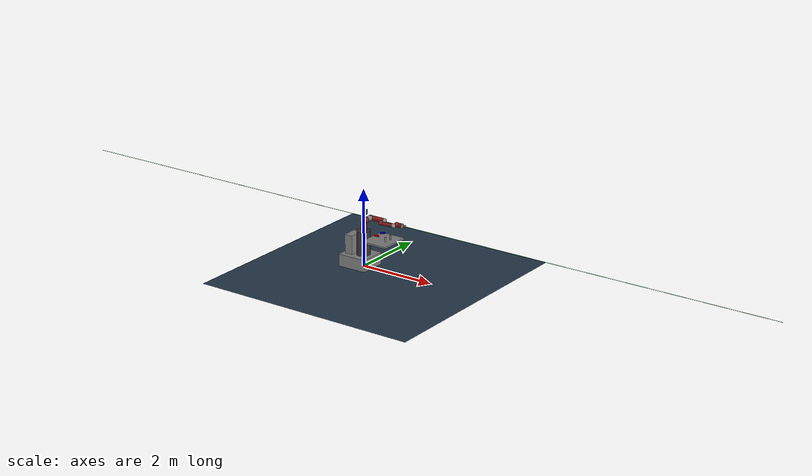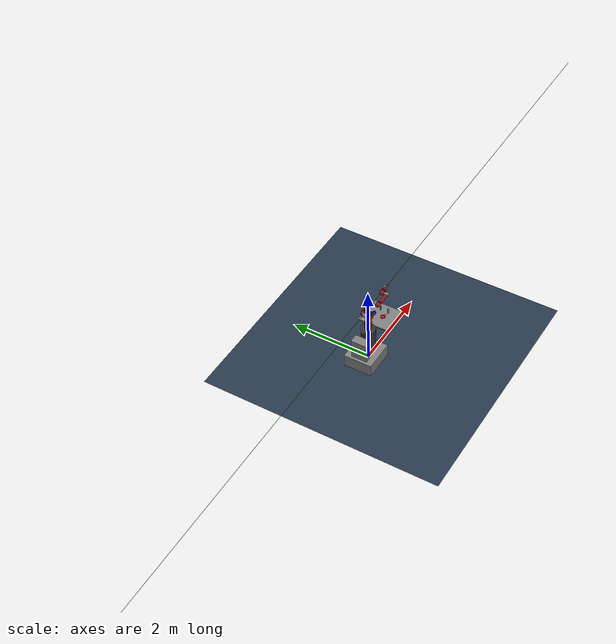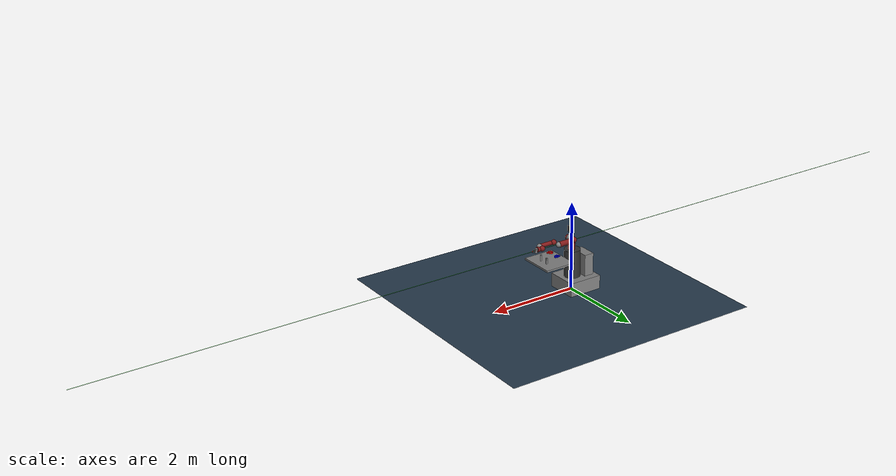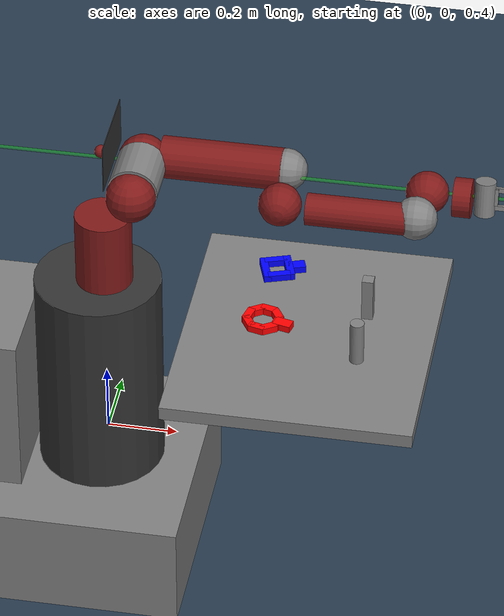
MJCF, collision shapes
<mujoco model="base">
  <compiler angle="radian" meshdir="meshes/" />
  <option cone="elliptic" impratio="20" />
  <size nconmax="5000" njmax="5000" />

  <asset>
  <texture builtin="gradient" height="256" rgb1=".9 .9 1." rgb2=".2 .3 .4" type="skybox" width="256" />
    <texture builtin="checker" height="512" name="texplane" rgb1=".2 .3 .4" rgb2=".1 0.15 0.2" type="2d" width="512" />
    <texture file="/Users/patrickliu/.mujoco/mjpro150/robosuite/robosuite/models/assets/arenas/../textures/light-wood.png" name="tex-light-wood" type="2d" />
    <texture file="/Users/patrickliu/.mujoco/mjpro150/robosuite/robosuite/models/assets/arenas/../textures/dark-wood.png" name="tex-dark-wood" type="2d" />
    <material name="light-wood" reflectance="0.5" texrepeat="15 15" texture="tex-light-wood" texuniform="true" />
    <material name="dark-wood" reflectance="0.5" texrepeat="5 5" texture="tex-dark-wood" texuniform="true" />
    <material name="floorplane" reflectance="0.5" texrepeat="1 1" texture="texplane" texuniform="true" />
  <mesh file="/Users/patrickliu/.mujoco/mjpro150/robosuite/robosuite/models/assets/robots/sawyer/meshes/pedestal.stl" name="pedestal" />
    <mesh file="/Users/patrickliu/.mujoco/mjpro150/robosuite/robosuite/models/assets/robots/sawyer/meshes/base.stl" name="base" />
    <mesh file="/Users/patrickliu/.mujoco/mjpro150/robosuite/robosuite/models/assets/robots/sawyer/meshes/l0.stl" name="l0" />
    <mesh file="/Users/patrickliu/.mujoco/mjpro150/robosuite/robosuite/models/assets/robots/sawyer/meshes/head.stl" name="head" />
    <mesh file="/Users/patrickliu/.mujoco/mjpro150/robosuite/robosuite/models/assets/robots/sawyer/meshes/l1.stl" name="l1" />
    <mesh file="/Users/patrickliu/.mujoco/mjpro150/robosuite/robosuite/models/assets/robots/sawyer/meshes/l2.stl" name="l2" />
    <mesh file="/Users/patrickliu/.mujoco/mjpro150/robosuite/robosuite/models/assets/robots/sawyer/meshes/l3.stl" name="l3" />
    <mesh file="/Users/patrickliu/.mujoco/mjpro150/robosuite/robosuite/models/assets/robots/sawyer/meshes/l4.stl" name="l4" />
    <mesh file="/Users/patrickliu/.mujoco/mjpro150/robosuite/robosuite/models/assets/robots/sawyer/meshes/l5.stl" name="l5" />
    <mesh file="/Users/patrickliu/.mujoco/mjpro150/robosuite/robosuite/models/assets/robots/sawyer/meshes/l6.stl" name="l6" />
  <mesh file="/Users/patrickliu/.mujoco/mjpro150/robosuite/robosuite/models/assets/grippers/meshes/two_finger_gripper/electric_gripper_base.STL" name="electric_gripper_base" />
        <mesh file="/Users/patrickliu/.mujoco/mjpro150/robosuite/robosuite/models/assets/grippers/meshes/two_finger_gripper/standard_narrow.STL" name="standard_narrow" />
        <mesh file="/Users/patrickliu/.mujoco/mjpro150/robosuite/robosuite/models/assets/grippers/meshes/two_finger_gripper/half_round_tip.STL" name="half_round_tip" />
    <texture file="/Users/patrickliu/.mujoco/mjpro150/robosuite/robosuite/models/assets/objects/../textures/metal.png" name="tex-metal" type="2d" />
    <material name="metal" reflectance="0.7" texrepeat="10 10" texture="tex-metal" texuniform="true" />
  </asset>

  <actuator>
  <velocity ctrllimited="true" ctrlrange="-1.74 1.74" joint="right_j0" kv="8.0" name="vel_right_j0" />
        <velocity ctrllimited="true" ctrlrange="-1.328 1.328" joint="right_j1" kv="7.0" name="vel_right_j1" />
        <velocity ctrllimited="true" ctrlrange="-1.957 1.957" joint="right_j2" kv="6.0" name="vel_right_j2" />
        <velocity ctrllimited="true" ctrlrange="-1.957 1.957" joint="right_j3" kv="4.0" name="vel_right_j3" />
        <velocity ctrllimited="true" ctrlrange="-3.485 3.485" joint="right_j4" kv="2.0" name="vel_right_j4" />
        <velocity ctrllimited="true" ctrlrange="-3.485 3.485" joint="right_j5" kv="0.5" name="vel_right_j5" />
        <velocity ctrllimited="true" ctrlrange="-4.545 4.545" joint="right_j6" kv="0.1" name="vel_right_j6" />
  <position ctrllimited="true" ctrlrange="-0.0115 0.020833" forcelimited="true" forcerange="-20 20" joint="r_gripper_r_finger_joint" kp="10000" name="gripper_r_gripper_r_finger_joint" />
        <position ctrllimited="true" ctrlrange="-0.020833 0.0115" forcelimited="true" forcerange="-20 20" joint="r_gripper_l_finger_joint" kp="10000" name="gripper_r_gripper_l_finger_joint" />

    </actuator>

  <worldbody>
  <geom condim="3" material="floorplane" name="floor" pos="0.5 -0.15 0.0" size="3 3 .125" type="plane" />
    <body name="table" pos="0.58 0.0 0.8">
      <geom friction="1 0.005 0.0001" name="table_collision" pos="0 0 0" size="0.35 0.4 0.02" type="box" />
      <geom conaffinity="0" contype="0" group="1" material="light-wood" pos="0 0 0" size="0.35 0.4 0.02" type="box" />
    </body>
    <body name="peg1" pos="0.73 0.1 0.85">
      <geom friction="1 0.005 0.0001" pos="0 0 0" size="0.016 0.016 0.1" type="box" />
      <geom conaffinity="0" contype="0" group="1" pos="0 0 0" rgba="0.3 0.3 1 1" size="0.016 0.016 0.1" type="box" />
    </body>
    <body name="peg2" pos="0.73 -0.09999999999999999 0.85">
      <geom friction="1 0.005 0.0001" pos="0 0 0" size="0.02 0.1" type="cylinder" />
      <geom conaffinity="0" contype="0" group="1" pos="0 0 0" rgba="1 0.3 0.3 1" size="0.02 0.1" type="cylinder" />
    </body>

    <light castshadow="false" diffuse=".8 .8 .8" dir="0 -.15 -1" directional="false" pos="1.5 0.85 4.0" specular="0.3 0.3 0.3" />
    <light castshadow="false" diffuse=".8 .8 .8" dir="0 -.15 -1" directional="false" pos="-2.5 -3.15 4.0" specular="0.3 0.3 0.3" />

    <camera mode="fixed" name="frontview" pos="2.1 0.0 1.45" quat="0.56 0.43 0.43 0.56" />

    <camera mode="fixed" name="birdview" pos="0.3 0.0 3.0" quat="0.7071 0 0 0.7071" />

    <camera mode="fixed" name="agentview" pos="1.3 0.0 1.65" quat="0.653 0.271 0.271 0.653" />
  <body name="base" pos="0.0 0.0 0.913">
      <inertial diaginertia="0 0 0" mass="0" pos="0 0 0" />
      <body name="controller_box" pos="0 0 0">
        <inertial diaginertia="1.71363 1.27988 0.809981" mass="46.64" pos="-0.325 0 -0.38" />
        <geom pos="-0.325 0 -0.38" size="0.11 0.2 0.265" type="box" />
      </body>
      <body name="pedestal_feet" pos="0 0 0">
        <inertial diaginertia="8.16095 9.59375 15.0785" mass="167.09" pos="-0.1225 0 -0.758" />
        <geom pos="-0.1225 0 -0.758" size="0.385 0.35 0.155" type="box" />
      </body>
      <body name="torso" pos="0 0 0">
        <inertial diaginertia="1e-08 1e-08 1e-08" mass="0.0001" pos="0 0 0" />
        <geom conaffinity="0" contype="0" group="1" rgba="0.2 0.2 0.2 1" size="0.05 0.05 0.05" type="box" />
      </body>
      <body name="pedestal" pos="0 0 0">
        <inertial diaginertia="6.0869 5.81635 4.20915" mass="60.864" pos="0 0 0" quat="0.659267 -0.259505 -0.260945 0.655692" />
        <geom conaffinity="0" contype="0" group="1" mesh="pedestal" pos="0.26 0.345 -0.91488" quat="0.5 0.5 -0.5 -0.5" rgba="0.2 0.2 0.2 1" type="mesh" />
        <geom pos="-0.02 0 -0.29" rgba="0.2 0.2 0.2 1" size="0.18 0.31" type="cylinder" />
      </body>
      <body name="right_arm_base_link" pos="0 0 0">
        <inertial diaginertia="0.00740351 0.00681776 0.00672942" mass="2.0687" pos="-0.0006241 -2.8025e-05 0.065404" quat="-0.209285 0.674441 0.227335 0.670558" />
        <geom conaffinity="0" contype="0" group="1" mesh="base" rgba="0.5 0.1 0.1 1" type="mesh" />
        <geom pos="0 0 0.12" rgba="0.5 0.1 0.1 1" size="0.08 0.12" type="cylinder" />
        <body name="right_l0" pos="0 0 0.08">
          <inertial diaginertia="0.0651588 0.0510944 0.0186218" mass="5.3213" pos="0.024366 0.010969 0.14363" quat="0.894823 0.00899958 -0.170275 0.412573" />
          <joint axis="0 0 1" limited="true" name="right_j0" pos="0 0 0" range="-3.0503 3.0503" />
          <geom conaffinity="0" contype="0" group="1" mesh="l0" rgba="0.5 0.1 0.1 1" type="mesh" />
          <geom pos="0.08 0 0.23" rgba="0.5 0.1 0.1 1" size="0.07" />
          <body name="head" pos="0 0 0.2965">
            <inertial diaginertia="0.0118334 0.00827089 0.00496574" mass="1.5795" pos="0.0053207 -2.6549e-05 0.1021" quat="0.999993 7.08405e-05 -0.00359857 -0.000626247" />
            <joint axis="0 0 1" limited="true" name="head_pan" pos="0 0 0" range="-5.0952 0.9064" />
            <geom conaffinity="0" contype="0" group="1" mesh="head" rgba="0.5 0.1 0.1 1" type="mesh" />
            <geom pos="0 0 0.08" rgba="0.5 0.1 0.1 1" size="0.018" />
            <body name="screen" pos="0.03 0 0.105" quat="0.5 0.5 0.5 0.5">
              <inertial diaginertia="1e-08 1e-08 1e-08" mass="0.0001" pos="0 0 0" />
              <geom conaffinity="0" contype="0" group="1" rgba="0.2 0.2 0.2 1" size="0.12 0.07 0.001" type="box" />
              <geom rgba="0.2 0.2 0.2 1" size="0.001" />
            </body>
            <body name="head_camera" pos="0.0228027 0 0.216572" quat="0.342813 -0.618449 0.618449 -0.342813">
              <inertial diaginertia="0 0 0" mass="0" pos="0.0228027 0 0.216572" quat="0.342813 -0.618449 0.618449 -0.342813" />
            </body>
          </body>
          <body name="right_torso_itb" pos="-0.055 0 0.22" quat="0.707107 0 -0.707107 0">
            <inertial diaginertia="1e-08 1e-08 1e-08" mass="0.0001" pos="0 0 0" />
          </body>
          <body name="right_l1" pos="0.081 0.05 0.237" quat="0.5 -0.5 0.5 0.5">
            <inertial diaginertia="0.0224339 0.0221624 0.0097097" mass="4.505" pos="-0.0030849 -0.026811 0.092521" quat="0.424888 0.891987 0.132364 -0.0794296" />
            <joint axis="0 0 1" limited="true" name="right_j1" pos="0 0 0" range="-3.8095 2.2736" />
            <geom conaffinity="0" contype="0" group="1" mesh="l1" rgba="0.5 0.1 0.1 1" type="mesh" />
            <geom pos="0 0 0.1225" rgba="0.5 0.1 0.1 1" size="0.07" />
            <body name="right_l2" pos="0 -0.14 0.1425" quat="0.707107 0.707107 0 0">
              <inertial diaginertia="0.0257928 0.025506 0.00292515" mass="1.745" pos="-0.00016044 -0.014967 0.13582" quat="0.707831 -0.0524761 0.0516007 0.702537" />
              <joint axis="0 0 1" limited="true" name="right_j2" pos="0 0 0" range="-3.0426 3.0426" />
              <geom conaffinity="0" contype="0" group="1" mesh="l2" rgba="0.5 0.1 0.1 1" type="mesh" />
              <geom pos="0 0 0.08" rgba="0.5 0.1 0.1 1" size="0.06 0.17" type="cylinder" />
              <body name="right_l3" pos="0 -0.042 0.26" quat="0.707107 -0.707107 0 0">
                <inertial diaginertia="0.0102404 0.0096997 0.00369622" mass="2.5097" pos="-0.0048135 -0.0281 -0.084154" quat="0.902999 0.385391 -0.0880901 0.168247" />
                <joint axis="0 0 1" limited="true" name="right_j3" pos="0 0 0" range="-3.0439 3.0439" />
                <geom conaffinity="0" contype="0" group="1" mesh="l3" rgba="0.5 0.1 0.1 1" type="mesh" />
                <geom pos="0 -0.01 -0.12" rgba="0.5 0.1 0.1 1" size="0.06" />
                <body name="right_l4" pos="0 -0.125 -0.1265" quat="0.707107 0.707107 0 0">
                  <inertial diaginertia="0.0136549 0.0135493 0.00127353" mass="1.1136" pos="-0.0018844 0.0069001 0.1341" quat="0.803612 0.031257 -0.0298334 0.593582" />
                  <joint axis="0 0 1" limited="true" name="right_j4" pos="0 0 0" range="-2.9761 2.9761" />
                  <geom conaffinity="0" contype="0" group="1" mesh="l4" rgba="0.5 0.1 0.1 1" type="mesh" />
                  <geom pos="0 0 0.11" rgba="0.5 0.1 0.1 1" size="0.045 0.15" type="cylinder" />
                  <body name="right_arm_itb" pos="-0.055 0 0.075" quat="0.707107 0 -0.707107 0">
                    <inertial diaginertia="1e-08 1e-08 1e-08" mass="0.0001" pos="0 0 0" />
                  </body>
                  <body name="right_l5" pos="0 0.031 0.275" quat="0.707107 -0.707107 0 0">
                    <inertial diaginertia="0.00474131 0.00422857 0.00190672" mass="1.5625" pos="0.0061133 -0.023697 0.076416" quat="0.404076 0.9135 0.0473125 0.00158335" />
                    <joint axis="0 0 1" damping="0.2" limited="true" name="right_j5" pos="0 0 0" range="-2.9761 2.9761" />
                    <geom conaffinity="0" contype="0" group="1" mesh="l5" rgba="0.5 0.1 0.1 1" type="mesh" />
                    <geom pos="0 0 0.1" rgba="0.5 0.1 0.1 1" size="0.06" />
                    <body name="right_hand_camera" pos="0.039552 -0.033 0.0695" quat="0.707107 0 0.707107 0">
                      <inertial diaginertia="0 0 0" mass="0" pos="0.039552 -0.033 0.0695" quat="0.707107 0 0.707107 0" />
                    </body>
                    <body name="right_wrist" pos="0 0 0.10541" quat="0.707107 0.707107 0 0">
                      <inertial diaginertia="0 0 0" mass="0" pos="0 0 0.10541" quat="0.707107 0.707107 0 0" />
                    </body>
                    <body name="right_l6" pos="0 -0.11 0.1053" quat="0.0616248 0.06163 -0.704416 0.704416">
                      <inertial diaginertia="0.000360258 0.000311068 0.000214974" mass="0.3292" pos="-8.0726e-06 0.0085838 -0.0049566" quat="0.479044 0.515636 -0.513069 0.491322" />
                      <joint axis="0 0 1" damping="0.1" limited="true" name="right_j6" pos="0 0 0" range="-4.7124 4.7124" />
                      <geom conaffinity="0" contype="0" group="1" mesh="l6" rgba="0.5 0.1 0.1 1" type="mesh" />
                      <geom pos="0 0.015 -0.01" rgba="0.5 0.1 0.1 1" size="0.055 0.025" type="cylinder" />
                      <body name="right_hand" pos="0 0 0.0245" quat="0.707105 0 0 0.707108">

                                          <inertial diaginertia="1e-08 1e-08 1e-08" mass="1e-08" pos="1e-08 1e-08 1e-08" quat="0.820473 0.339851 -0.17592 0.424708" />
        <geom size="1e-08 5e-09" type="cylinder" />
        <body name="right_gripper_base" pos="0 0 0.025">
            <inertial diaginertia="3e-08 2e-08 2e-08" mass="0.3" pos="0 0 0" quat="-0.5 0.5 0.5 0.5" />
            <geom conaffinity="0" contype="0" group="1" mesh="electric_gripper_base" quat="0 0 0.707107 0.707107" type="mesh" />
            <geom quat="0 0 0.707107 0.707107" size="0.029 0.05" type="cylinder" />
            <body name="right_gripper" pos="0 0 0.095">
                <inertial diaginertia="0 0 0" mass="0.0001" pos="0 0 0" />

                <site group="1" name="grip_site" pos="0 0 0" rgba="1 0 0 1" size="0.01 0.01 0.01" type="sphere" />

                <site group="1" name="grip_site_cylinder" pos="0 0 0" rgba="0 1 0 0.3" size="0.005 10" type="cylinder" />

                <camera fovy="75" mode="fixed" name="eye_in_hand" pos="0 0 0" quat="0 -1 1 0" />
            </body>

            <body name="r_gripper_l_finger" pos="0 0.01 0.02">
                <inertial diaginertia="0.01 0.01 0.01" mass="0.02" pos="0 0 0" quat="0 0 0 -1" />

                <joint axis="0 1 0" damping="100" limited="true" name="r_gripper_l_finger_joint" pos="0 0 0" range="-0.0115 0.020833" type="slide" />

                <geom conaffinity="0" contype="0" group="1" mesh="standard_narrow" name="r_gripper_l_finger" quat="0 0 0 -1" type="mesh" />

                <geom conaffinity="1" contype="0" friction="0 0 0" name="l_finger_g0" pos="0 0.01725 0.04" quat="0 0 0 -1" size="0.005 0.00675 0.0375" type="box" />
                <geom conaffinity="1" contype="0" friction="0 0 0" name="l_finger_g1" pos="-0.005 -0.003 0.0083" quat="0 0 0 -1" size="0.005 0.025 0.0085" type="box" />

                <body name="r_gripper_l_finger_tip" pos="0 0.01725 0.075">
                    <inertial diaginertia="0.01 0.01 0.01" mass="0.01" pos="0 0 0" quat="0 0 0 1" />
                    <geom conaffinity="0" contype="0" group="1" mesh="half_round_tip" quat="0 0 0 1" type="mesh" />

                    <geom conaffinity="1" contype="0" friction="0 0 0" name="l_fingertip_g0" pos="0 -0.0045 -0.015" quat="0 0 0 1" size="0.004 0.004 0.0185" type="box" />

                </body>
            </body>

            <body name="r_gripper_r_finger" pos="0 -0.01 0.02">
                <inertial diaginertia="0.01 0.01 0.01" mass="0.02" pos="0 0 0" />

                <joint axis="0 1 0" damping="100" limited="true" name="r_gripper_r_finger_joint" pos="0 0 0" range="-0.020833 0.0115" type="slide" />

                <geom conaffinity="0" contype="0" group="1" mesh="standard_narrow" name="r_gripper_r_finger" type="mesh" />

                <geom conaffinity="1" contype="0" friction="0 0 0" name="r_finger_g0" pos="0 -0.01725 0.04" size="0.005 0.00675 0.0375" type="box" />
                <geom conaffinity="1" contype="0" friction="0 0 0" name="r_finger_g1" pos="0.005 0.003 0.0083" size="0.005 0.025 0.0085" type="box" />

                <body name="r_gripper_r_finger_tip" pos="0 -0.01725 0.075">
                    <inertial diaginertia="0.01 0.01 0.01" mass="0.01" pos="0 0 0" />
                    <geom conaffinity="0" contype="0" group="1" mesh="half_round_tip" type="mesh" />

                    <geom conaffinity="1" contype="0" friction="0 0 0" name="r_fingertip_g0" pos="0 0.0045 -0.015" size="0.004 0.004 0.0185" type="box" />

                </body>
            </body>
        </body>
    </body>
                    </body>
                  </body>
                  <body name="right_l4_2" pos="0 0 0">
                    <inertial diaginertia="1e-08 1e-08 1e-08" mass="1e-08" pos="1e-08 1e-08 1e-08" quat="0.820473 0.339851 -0.17592 0.424708" />
                    <geom pos="0 0.01 0.26" size="0.06" />
                  </body>
                </body>
              </body>
              <body name="right_l2_2" pos="0 0 0">
                <inertial diaginertia="1e-08 1e-08 1e-08" mass="1e-08" pos="1e-08 1e-08 1e-08" quat="0.820473 0.339851 -0.17592 0.424708" />
                <geom pos="0 0 0.26" size="0.06" />
              </body>
            </body>
            <body name="right_l1_2" pos="0 0 0">
              <inertial diaginertia="1e-08 1e-08 1e-08" mass="1e-08" pos="1e-08 1e-08 1e-08" quat="0.820473 0.339851 -0.17592 0.424708" />
              <geom pos="0 0 0.035" size="0.07 0.07" type="cylinder" />
            </body>
          </body>
        </body>
      </body>
    </body>
  <body name="SquareNut0" pos="0.4688586117733953 0.12193204480781915 0.9342099736480309" quat="0.9866821351411746 0 0 0.16266027232625896">
        <geom condim="4" density="100" friction="0.95 0.3 0.2" group="1" name="SquareNut0-0" pos="-0.03325 0 0" rgba="0 0 1 1" size="0.0105 0.04375 0.01" solimp="0.998 0.998 0.001" solref="0.02 1" type="box" />
        <geom condim="4" density="100" friction="0.95 0.3 0.1" group="1" name="SquareNut0-1" pos="0.0 0.03325 0" rgba="0 0 1 1" size="0.03125 0.0105 0.01" solimp="0.998 0.998 0.001" solref="0.02 1" type="box" />
        <geom condim="4" density="100" friction="0.95 0.3 0.1" group="1" name="SquareNut0-2" pos="0.0 -0.03325 0" rgba="0 0 1 1" size="0.03125 0.0105 0.01" solimp="0.998 0.998 0.001" solref="0.02 1" type="box" />
        <geom condim="4" density="100" friction="0.95 0.3 0.1" group="1" name="SquareNut0-3" pos="0.03325 0 0" rgba="0 0 1 1" size="0.0105 0.04375 0.01" solimp="0.998 0.998 0.001" solref="0.02 1" type="box" />
        <geom condim="4" density="100" friction="0.95 0.3 0.1" group="1" name="SquareNut0-4" pos="0.054 0 0" rgba="0 0 1 1" size="0.02525 0.015875 0.01" solimp="0.998 0.998 0.001" solref="0.02 1" type="box" />
      <site name="SquareNut0" pos="0 0 0" rgba="1 0 0 0" size="0.002 0.002 0.002" type="sphere" /><joint damping="0.0005" name="SquareNut0" type="free" /></body>
      <body name="RoundNut0" pos="0.4689944564825152 -0.11118753881804068 0.9357287014734367" quat="-0.9928745554301885 0 0 0.11916424455055866">
        <geom condim="4" density="100" friction="0.95 0.3 0.1" group="1" name="RoundNut0-0" pos="-0.04245 0 0.0" rgba="1 0 0 1" size="0.01125 0.0225 0.01" solimp="0.998 0.998 0.001" solref="0.02 1" type="box" />
        <geom condim="4" density="100" friction="0.95 0.3 0.1" group="1" name="RoundNut0-1" pos="0.04245 0 0.0" rgba="1 0 0 1" size="0.01125 0.0225 0.01" solimp="0.998 0.998 0.001" solref="0.02 1" type="box" />
        <geom condim="4" density="100" friction="0.95 0.3 0.1" group="1" name="RoundNut0-2" pos="0 -0.04245 0.0" rgba="1 0 0 1" size="0.0225 0.01125 0.01" solimp="0.998 0.998 0.001" solref="0.02 1" type="box" />
        <geom condim="4" density="100" friction="0.95 0.3 0.1" group="1" name="RoundNut0-3" pos="0 0.04245 0.0" rgba="1 0 0 1" size="0.0225 0.01125 0.01" solimp="0.998 0.998 0.001" solref="0.02 1" type="box" />
        <geom axisangle="0 0 1 0.785398" condim="4" density="100" friction="0.95 0.3 0.1" group="1" name="RoundNut0-4" pos="-0.03 -0.03 0.0" rgba="1 0 0 1" size="0.01125 0.0225 0.01" solimp="0.998 0.998 0.001" solref="0.02 1" type="box" />
        <geom axisangle="0 0 1 0.785398" condim="4" density="100" friction="0.95 0.3 0.1" group="1" name="RoundNut0-5" pos="0.03 0.03 0.0" rgba="1 0 0 1" size="0.01125 0.0225 0.01" solimp="0.998 0.998 0.001" solref="0.02 1" type="box" />
        <geom axisangle="0 0 1 0.785398" condim="4" density="100" friction="0.95 0.3 0.1" group="1" name="RoundNut0-6" pos="0.03 -0.03 0.0" rgba="1 0 0 1" size="0.0225 0.01125 0.01" solimp="0.998 0.998 0.001" solref="0.02 1" type="box" />
        <geom axisangle="0 0 1 0.785398" condim="4" density="100" friction="0.95 0.3 0.1" group="1" name="RoundNut0-7" pos="-0.03 0.03 0.0" rgba="1 0 0 1" size="0.0225 0.01125 0.01" solimp="0.998 0.998 0.001" solref="0.02 1" type="box" />
        <geom condim="4" density="100" friction="0.95 0.3 0.1" group="1" name="RoundNut0-8" pos="0.06 0 0.0" rgba="1 0 0 1" size="0.02525 0.015875 0.01" solimp="0.998 0.998 0.001" solref="0.02 1" type="box" />
      <site name="RoundNut0" pos="0 0 0" rgba="1 0 0 0" size="0.002 0.002 0.002" type="sphere" /><joint damping="0.0005" name="RoundNut0" type="free" /></body>
      </worldbody>

  <equality>
  </equality>
<contact /><default /></mujoco>
